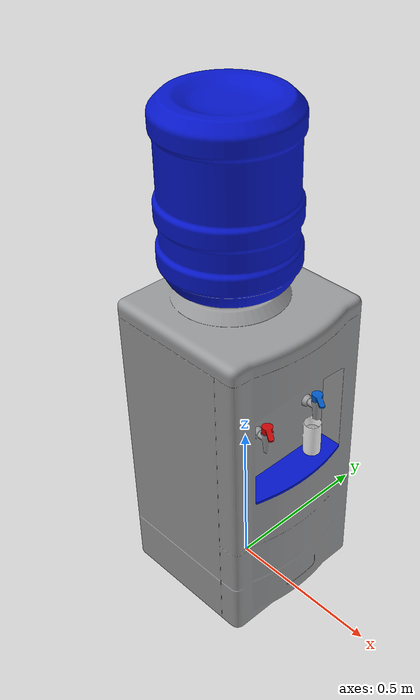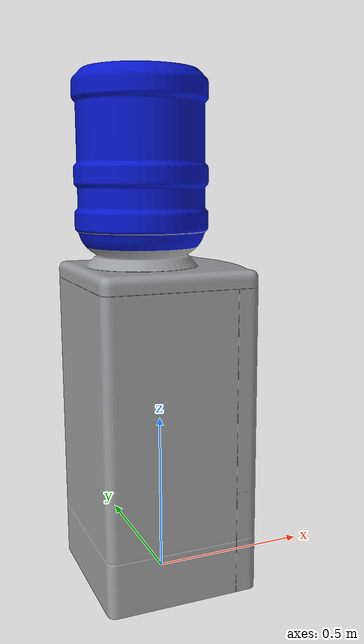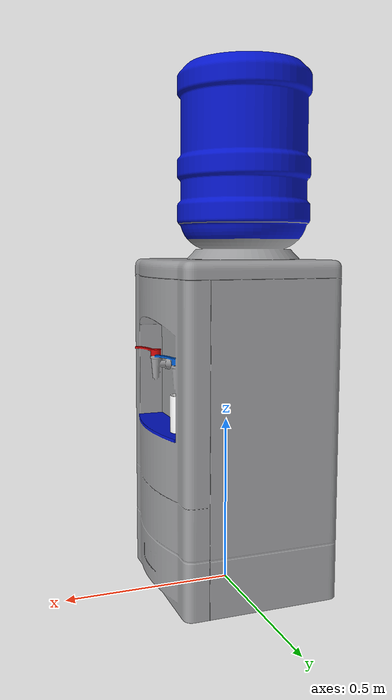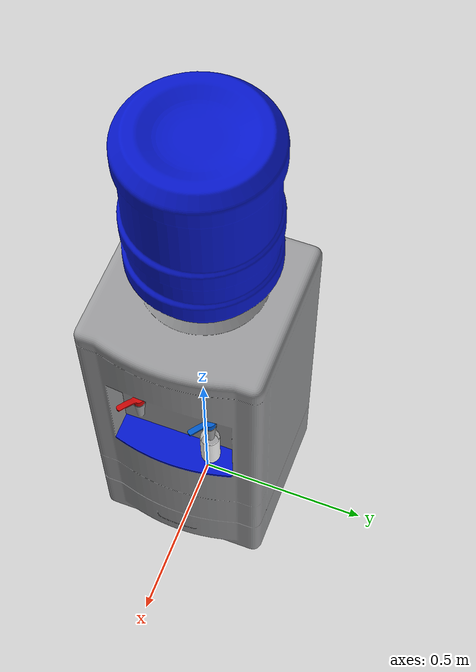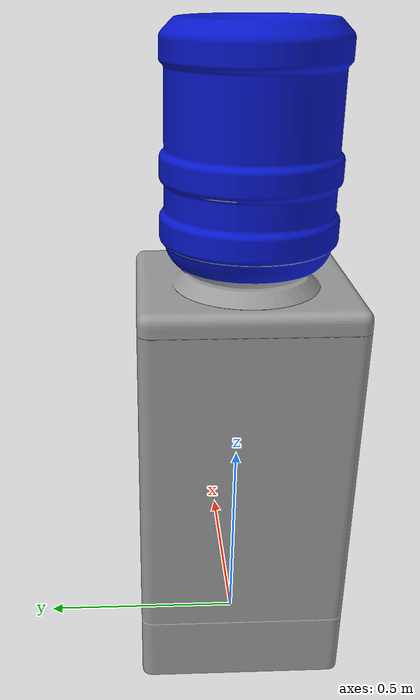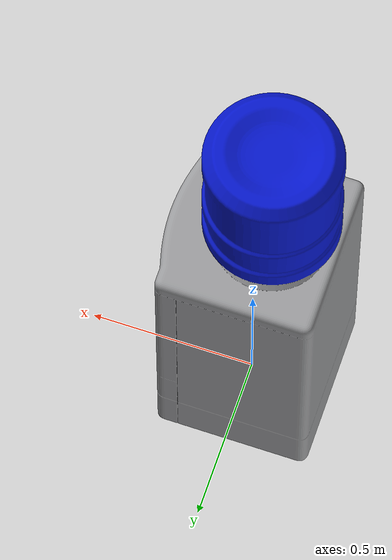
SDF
<?xml version="1.0"?>

<sdf version="1.6">
<model name="WaterDispenser">
  <static>1</static>
    <link name="link">
      <inertial>
        <pose>0.0 0.0 0.0 0.0 0.0 0.0</pose>
        <mass>1</mass>
        <inertia>
          <ixx>0.0</ixx>
          <ixy>0.0</ixy>
          <ixz>0.0</ixz>
          <iyy>0.0</iyy>
          <iyz>0.0</iyz>
          <izz>0.0</izz>
        </inertia>
      </inertial>
      <collision name="collision">
        <pose>0.0 0.0 0.0 0.0 0.0 0.0</pose>
        <geometry>
          <mesh>
				  	<uri>model://WaterDispenser/meshes/WaterDispenser.dae</uri>
				  	<scale>1 1 1</scale>
				  </mesh>
        </geometry>
      </collision>
      <visual name="visual">
        <pose>0.0 0.0 0.0 0.0 0.0 0.0</pose>
        <geometry>
          <mesh>
				  	<uri>model://WaterDispenser/meshes/WaterDispenser.dae</uri>
				  	<scale>1 1 1</scale>
				  </mesh>
        </geometry>
      </visual>
    </link>
  </model>
 </sdf>
